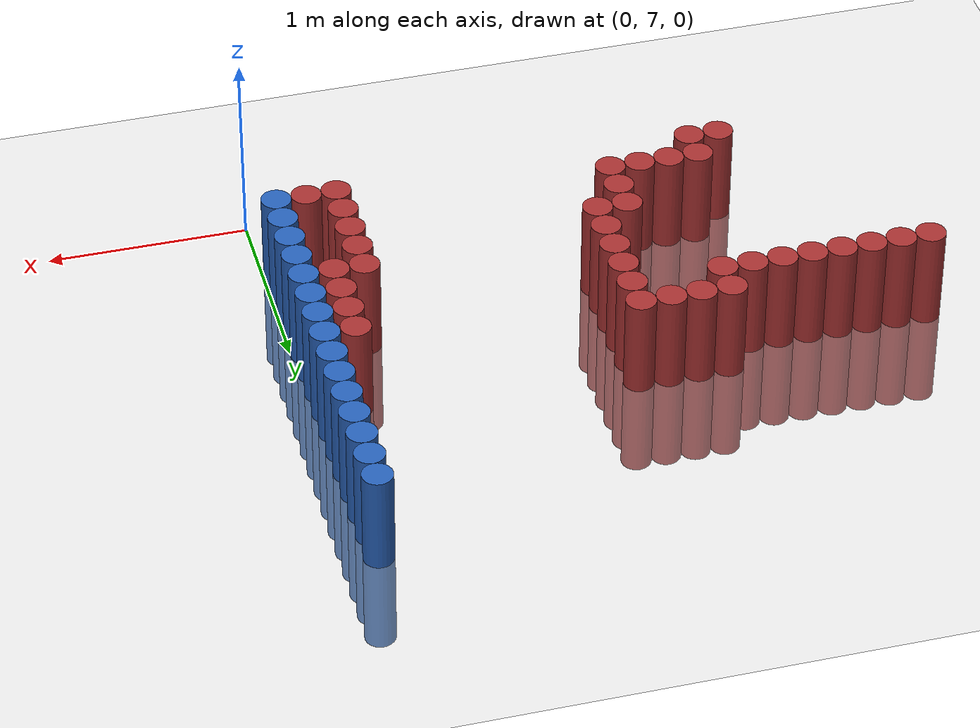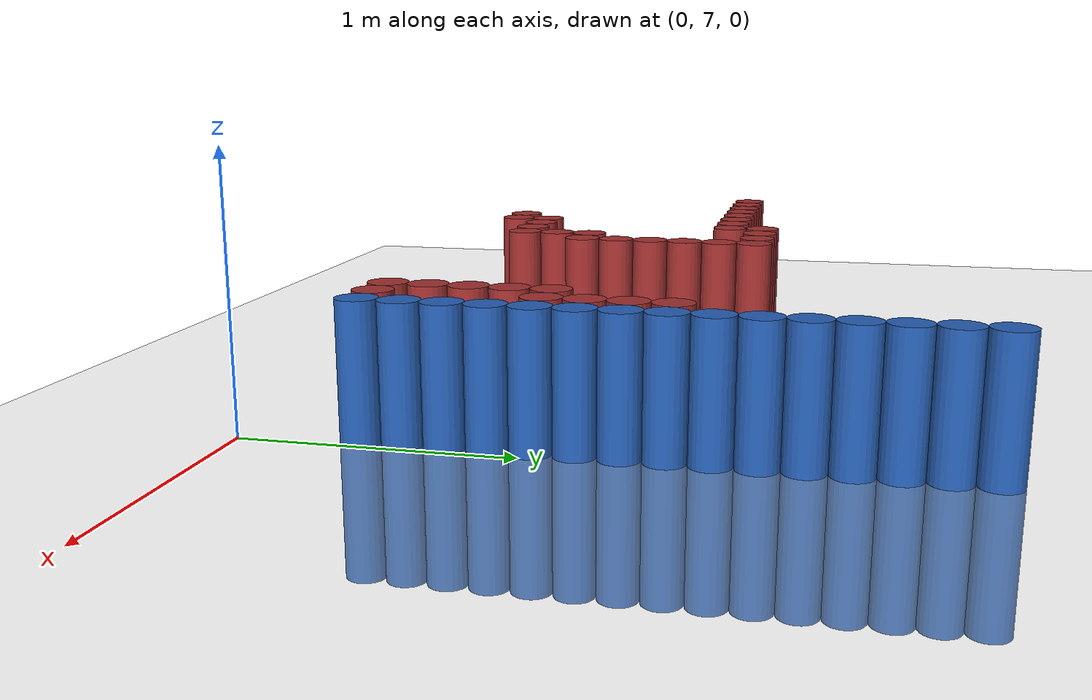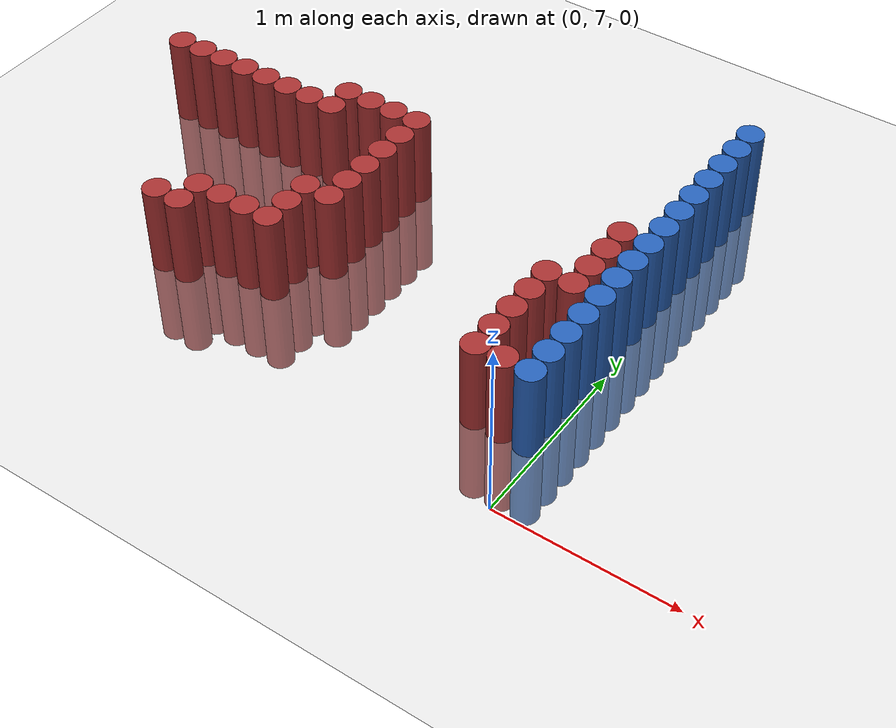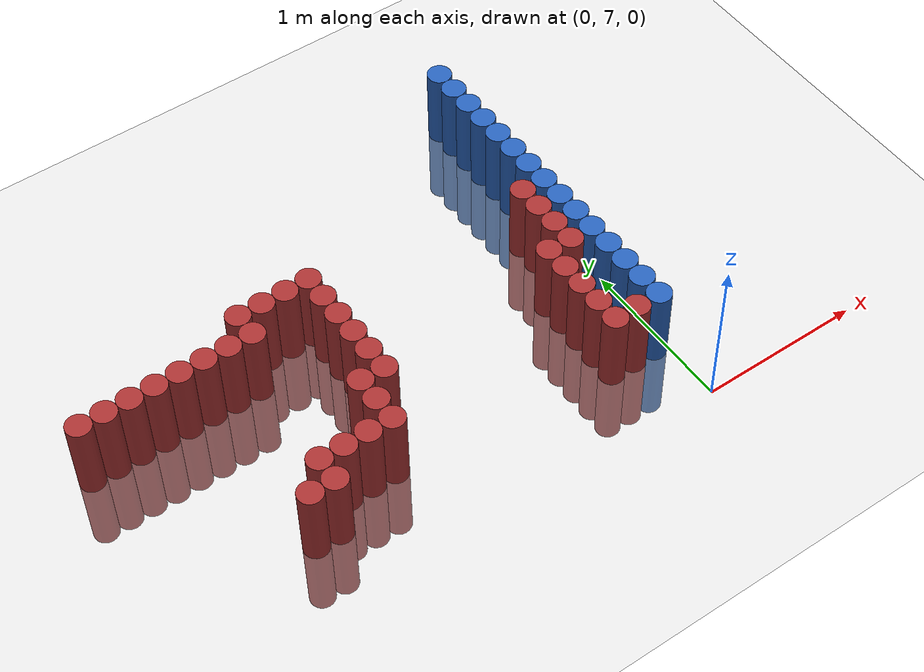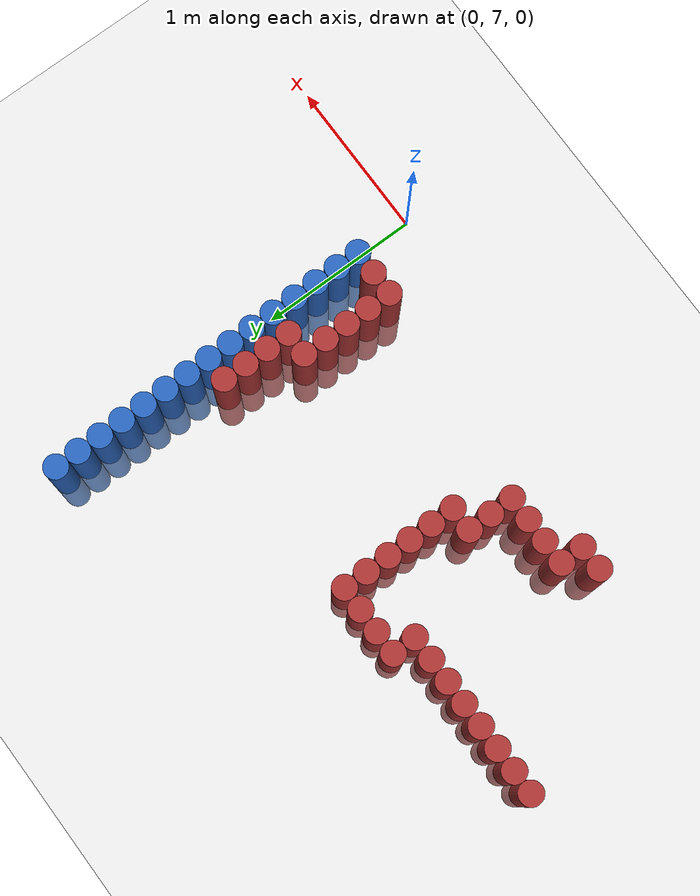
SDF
<sdf version="1.6">
 <world name="default">
  <model name="ground_plane">
   <static>1</static>
   <link name="link">
    <collision name="collision">
     <geometry><plane><normal>0 0 1</normal><size>100 100</size></plane></geometry>
     <surface><friction><ode><mu>100</mu><mu2>50</mu2></ode></friction></surface>
    </collision>
    <visual name="visual">
     <cast_shadows>0</cast_shadows>
     <geometry><plane><normal>0 0 1</normal><size>100 100</size></plane></geometry>
     <material>
      <script><uri>file://media/materials/scripts/gazebo.material</uri><name>Gazebo/Grey</name></script>
     </material>
    </visual>
   </link>
  </model>
  <model name="unit_cylinder_149">
   <static>1</static>
   <pose>-3.075000 8.475000 0.000000 0.000000 0.000000 0.000000</pose>
   <link name="link">
    <inertial>
     <mass>1</mass>
     <inertia><ixx>0.145833</ixx><ixy>0</ixy><ixz>0</ixz><iyy>0.145833</iyy><iyz>0</iyz><izz>0.125</izz></inertia>
    </inertial>
    <collision name="collision">
     <geometry><cylinder><radius>0.075000</radius><length>1</length></cylinder></geometry>
    </collision>
    <visual name="visual">
     <geometry><cylinder><radius>0.075000</radius><length>1</length></cylinder></geometry>
     <material>
      <ambient>0.648000 0.192000 0.192000 1</ambient>
      <diffuse>0.648000 0.192000 0.192000 1</diffuse>
     </material>
     <material>
      <script><name>Gazebo/Grey</name><uri>file://media/materials/scripts/gazebo.material</uri></script>
     </material>
    </visual>
   </link>
  </model>
  <model name="unit_cylinder_152">
   <static>1</static>
   <pose>-2.925000 8.475000 0.000000 0.000000 0.000000 0.000000</pose>
   <link name="link">
    <inertial>
     <mass>1</mass>
     <inertia><ixx>0.145833</ixx><ixy>0</ixy><ixz>0</ixz><iyy>0.145833</iyy><iyz>0</iyz><izz>0.125</izz></inertia>
    </inertial>
    <collision name="collision">
     <geometry><cylinder><radius>0.075000</radius><length>1</length></cylinder></geometry>
    </collision>
    <visual name="visual">
     <geometry><cylinder><radius>0.075000</radius><length>1</length></cylinder></geometry>
     <material>
      <ambient>0.648000 0.192000 0.192000 1</ambient>
      <diffuse>0.648000 0.192000 0.192000 1</diffuse>
     </material>
     <material>
      <script><name>Gazebo/Grey</name><uri>file://media/materials/scripts/gazebo.material</uri></script>
     </material>
    </visual>
   </link>
  </model>
  <model name="unit_cylinder_155">
   <static>1</static>
   <pose>-2.775000 8.475000 0.000000 0.000000 0.000000 0.000000</pose>
   <link name="link">
    <inertial>
     <mass>1</mass>
     <inertia><ixx>0.145833</ixx><ixy>0</ixy><ixz>0</ixz><iyy>0.145833</iyy><iyz>0</iyz><izz>0.125</izz></inertia>
    </inertial>
    <collision name="collision">
     <geometry><cylinder><radius>0.075000</radius><length>1</length></cylinder></geometry>
    </collision>
    <visual name="visual">
     <geometry><cylinder><radius>0.075000</radius><length>1</length></cylinder></geometry>
     <material>
      <ambient>0.648000 0.192000 0.192000 1</ambient>
      <diffuse>0.648000 0.192000 0.192000 1</diffuse>
     </material>
     <material>
      <script><name>Gazebo/Grey</name><uri>file://media/materials/scripts/gazebo.material</uri></script>
     </material>
    </visual>
   </link>
  </model>
  <model name="unit_cylinder_162">
   <static>1</static>
   <pose>-2.625000 8.475000 0.000000 0.000000 0.000000 0.000000</pose>
   <link name="link">
    <inertial>
     <mass>1</mass>
     <inertia><ixx>0.145833</ixx><ixy>0</ixy><ixz>0</ixz><iyy>0.145833</iyy><iyz>0</iyz><izz>0.125</izz></inertia>
    </inertial>
    <collision name="collision">
     <geometry><cylinder><radius>0.075000</radius><length>1</length></cylinder></geometry>
    </collision>
    <visual name="visual">
     <geometry><cylinder><radius>0.075000</radius><length>1</length></cylinder></geometry>
     <material>
      <ambient>0.648000 0.192000 0.192000 1</ambient>
      <diffuse>0.648000 0.192000 0.192000 1</diffuse>
     </material>
     <material>
      <script><name>Gazebo/Grey</name><uri>file://media/materials/scripts/gazebo.material</uri></script>
     </material>
    </visual>
   </link>
  </model>
  <model name="unit_cylinder_164">
   <static>1</static>
   <pose>-2.475000 8.475000 0.000000 0.000000 0.000000 0.000000</pose>
   <link name="link">
    <inertial>
     <mass>1</mass>
     <inertia><ixx>0.145833</ixx><ixy>0</ixy><ixz>0</ixz><iyy>0.145833</iyy><iyz>0</iyz><izz>0.125</izz></inertia>
    </inertial>
    <collision name="collision">
     <geometry><cylinder><radius>0.075000</radius><length>1</length></cylinder></geometry>
    </collision>
    <visual name="visual">
     <geometry><cylinder><radius>0.075000</radius><length>1</length></cylinder></geometry>
     <material>
      <ambient>0.648000 0.192000 0.192000 1</ambient>
      <diffuse>0.648000 0.192000 0.192000 1</diffuse>
     </material>
     <material>
      <script><name>Gazebo/Grey</name><uri>file://media/materials/scripts/gazebo.material</uri></script>
     </material>
    </visual>
   </link>
  </model>
  <model name="unit_cylinder_177">
   <static>1</static>
   <pose>-2.325000 7.425000 0.000000 0.000000 0.000000 0.000000</pose>
   <link name="link">
    <inertial>
     <mass>1</mass>
     <inertia><ixx>0.145833</ixx><ixy>0</ixy><ixz>0</ixz><iyy>0.145833</iyy><iyz>0</iyz><izz>0.125</izz></inertia>
    </inertial>
    <collision name="collision">
     <geometry><cylinder><radius>0.075000</radius><length>1</length></cylinder></geometry>
    </collision>
    <visual name="visual">
     <geometry><cylinder><radius>0.075000</radius><length>1</length></cylinder></geometry>
     <material>
      <ambient>0.648000 0.192000 0.192000 1</ambient>
      <diffuse>0.648000 0.192000 0.192000 1</diffuse>
     </material>
     <material>
      <script><name>Gazebo/Grey</name><uri>file://media/materials/scripts/gazebo.material</uri></script>
     </material>
    </visual>
   </link>
  </model>
  <model name="unit_cylinder_178">
   <static>1</static>
   <pose>-2.325000 8.475000 0.000000 0.000000 0.000000 0.000000</pose>
   <link name="link">
    <inertial>
     <mass>1</mass>
     <inertia><ixx>0.145833</ixx><ixy>0</ixy><ixz>0</ixz><iyy>0.145833</iyy><iyz>0</iyz><izz>0.125</izz></inertia>
    </inertial>
    <collision name="collision">
     <geometry><cylinder><radius>0.075000</radius><length>1</length></cylinder></geometry>
    </collision>
    <visual name="visual">
     <geometry><cylinder><radius>0.075000</radius><length>1</length></cylinder></geometry>
     <material>
      <ambient>0.648000 0.192000 0.192000 1</ambient>
      <diffuse>0.648000 0.192000 0.192000 1</diffuse>
     </material>
     <material>
      <script><name>Gazebo/Grey</name><uri>file://media/materials/scripts/gazebo.material</uri></script>
     </material>
    </visual>
   </link>
  </model>
  <model name="unit_cylinder_182">
   <static>1</static>
   <pose>-2.175000 7.425000 0.000000 0.000000 0.000000 0.000000</pose>
   <link name="link">
    <inertial>
     <mass>1</mass>
     <inertia><ixx>0.145833</ixx><ixy>0</ixy><ixz>0</ixz><iyy>0.145833</iyy><iyz>0</iyz><izz>0.125</izz></inertia>
    </inertial>
    <collision name="collision">
     <geometry><cylinder><radius>0.075000</radius><length>1</length></cylinder></geometry>
    </collision>
    <visual name="visual">
     <geometry><cylinder><radius>0.075000</radius><length>1</length></cylinder></geometry>
     <material>
      <ambient>0.648000 0.192000 0.192000 1</ambient>
      <diffuse>0.648000 0.192000 0.192000 1</diffuse>
     </material>
     <material>
      <script><name>Gazebo/Grey</name><uri>file://media/materials/scripts/gazebo.material</uri></script>
     </material>
    </visual>
   </link>
  </model>
  <model name="unit_cylinder_183">
   <static>1</static>
   <pose>-2.175000 7.575000 0.000000 0.000000 0.000000 0.000000</pose>
   <link name="link">
    <inertial>
     <mass>1</mass>
     <inertia><ixx>0.145833</ixx><ixy>0</ixy><ixz>0</ixz><iyy>0.145833</iyy><iyz>0</iyz><izz>0.125</izz></inertia>
    </inertial>
    <collision name="collision">
     <geometry><cylinder><radius>0.075000</radius><length>1</length></cylinder></geometry>
    </collision>
    <visual name="visual">
     <geometry><cylinder><radius>0.075000</radius><length>1</length></cylinder></geometry>
     <material>
      <ambient>0.648000 0.192000 0.192000 1</ambient>
      <diffuse>0.648000 0.192000 0.192000 1</diffuse>
     </material>
     <material>
      <script><name>Gazebo/Grey</name><uri>file://media/materials/scripts/gazebo.material</uri></script>
     </material>
    </visual>
   </link>
  </model>
  <model name="unit_cylinder_184">
   <static>1</static>
   <pose>-2.175000 8.475000 0.000000 0.000000 0.000000 0.000000</pose>
   <link name="link">
    <inertial>
     <mass>1</mass>
     <inertia><ixx>0.145833</ixx><ixy>0</ixy><ixz>0</ixz><iyy>0.145833</iyy><iyz>0</iyz><izz>0.125</izz></inertia>
    </inertial>
    <collision name="collision">
     <geometry><cylinder><radius>0.075000</radius><length>1</length></cylinder></geometry>
    </collision>
    <visual name="visual">
     <geometry><cylinder><radius>0.075000</radius><length>1</length></cylinder></geometry>
     <material>
      <ambient>0.648000 0.192000 0.192000 1</ambient>
      <diffuse>0.648000 0.192000 0.192000 1</diffuse>
     </material>
     <material>
      <script><name>Gazebo/Grey</name><uri>file://media/materials/scripts/gazebo.material</uri></script>
     </material>
    </visual>
   </link>
  </model>
  <model name="unit_cylinder_185">
   <static>1</static>
   <pose>-2.025000 7.575000 0.000000 0.000000 0.000000 0.000000</pose>
   <link name="link">
    <inertial>
     <mass>1</mass>
     <inertia><ixx>0.145833</ixx><ixy>0</ixy><ixz>0</ixz><iyy>0.145833</iyy><iyz>0</iyz><izz>0.125</izz></inertia>
    </inertial>
    <collision name="collision">
     <geometry><cylinder><radius>0.075000</radius><length>1</length></cylinder></geometry>
    </collision>
    <visual name="visual">
     <geometry><cylinder><radius>0.075000</radius><length>1</length></cylinder></geometry>
     <material>
      <ambient>0.648000 0.192000 0.192000 1</ambient>
      <diffuse>0.648000 0.192000 0.192000 1</diffuse>
     </material>
     <material>
      <script><name>Gazebo/Grey</name><uri>file://media/materials/scripts/gazebo.material</uri></script>
     </material>
    </visual>
   </link>
  </model>
  <model name="unit_cylinder_186">
   <static>1</static>
   <pose>-2.025000 8.475000 0.000000 0.000000 0.000000 0.000000</pose>
   <link name="link">
    <inertial>
     <mass>1</mass>
     <inertia><ixx>0.145833</ixx><ixy>0</ixy><ixz>0</ixz><iyy>0.145833</iyy><iyz>0</iyz><izz>0.125</izz></inertia>
    </inertial>
    <collision name="collision">
     <geometry><cylinder><radius>0.075000</radius><length>1</length></cylinder></geometry>
    </collision>
    <visual name="visual">
     <geometry><cylinder><radius>0.075000</radius><length>1</length></cylinder></geometry>
     <material>
      <ambient>0.648000 0.192000 0.192000 1</ambient>
      <diffuse>0.648000 0.192000 0.192000 1</diffuse>
     </material>
     <material>
      <script><name>Gazebo/Grey</name><uri>file://media/materials/scripts/gazebo.material</uri></script>
     </material>
    </visual>
   </link>
  </model>
  <model name="unit_cylinder_187">
   <static>1</static>
   <pose>-2.025000 8.625000 0.000000 0.000000 0.000000 0.000000</pose>
   <link name="link">
    <inertial>
     <mass>1</mass>
     <inertia><ixx>0.145833</ixx><ixy>0</ixy><ixz>0</ixz><iyy>0.145833</iyy><iyz>0</iyz><izz>0.125</izz></inertia>
    </inertial>
    <collision name="collision">
     <geometry><cylinder><radius>0.075000</radius><length>1</length></cylinder></geometry>
    </collision>
    <visual name="visual">
     <geometry><cylinder><radius>0.075000</radius><length>1</length></cylinder></geometry>
     <material>
      <ambient>0.648000 0.192000 0.192000 1</ambient>
      <diffuse>0.648000 0.192000 0.192000 1</diffuse>
     </material>
     <material>
      <script><name>Gazebo/Grey</name><uri>file://media/materials/scripts/gazebo.material</uri></script>
     </material>
    </visual>
   </link>
  </model>
  <model name="unit_cylinder_188">
   <static>1</static>
   <pose>-1.875000 7.575000 0.000000 0.000000 0.000000 0.000000</pose>
   <link name="link">
    <inertial>
     <mass>1</mass>
     <inertia><ixx>0.145833</ixx><ixy>0</ixy><ixz>0</ixz><iyy>0.145833</iyy><iyz>0</iyz><izz>0.125</izz></inertia>
    </inertial>
    <collision name="collision">
     <geometry><cylinder><radius>0.075000</radius><length>1</length></cylinder></geometry>
    </collision>
    <visual name="visual">
     <geometry><cylinder><radius>0.075000</radius><length>1</length></cylinder></geometry>
     <material>
      <ambient>0.648000 0.192000 0.192000 1</ambient>
      <diffuse>0.648000 0.192000 0.192000 1</diffuse>
     </material>
     <material>
      <script><name>Gazebo/Grey</name><uri>file://media/materials/scripts/gazebo.material</uri></script>
     </material>
    </visual>
   </link>
  </model>
  <model name="unit_cylinder_189">
   <static>1</static>
   <pose>-1.875000 8.625000 0.000000 0.000000 0.000000 0.000000</pose>
   <link name="link">
    <inertial>
     <mass>1</mass>
     <inertia><ixx>0.145833</ixx><ixy>0</ixy><ixz>0</ixz><iyy>0.145833</iyy><iyz>0</iyz><izz>0.125</izz></inertia>
    </inertial>
    <collision name="collision">
     <geometry><cylinder><radius>0.075000</radius><length>1</length></cylinder></geometry>
    </collision>
    <visual name="visual">
     <geometry><cylinder><radius>0.075000</radius><length>1</length></cylinder></geometry>
     <material>
      <ambient>0.648000 0.192000 0.192000 1</ambient>
      <diffuse>0.648000 0.192000 0.192000 1</diffuse>
     </material>
     <material>
      <script><name>Gazebo/Grey</name><uri>file://media/materials/scripts/gazebo.material</uri></script>
     </material>
    </visual>
   </link>
  </model>
  <model name="unit_cylinder_190">
   <static>1</static>
   <pose>-1.725000 7.575000 0.000000 0.000000 0.000000 0.000000</pose>
   <link name="link">
    <inertial>
     <mass>1</mass>
     <inertia><ixx>0.145833</ixx><ixy>0</ixy><ixz>0</ixz><iyy>0.145833</iyy><iyz>0</iyz><izz>0.125</izz></inertia>
    </inertial>
    <collision name="collision">
     <geometry><cylinder><radius>0.075000</radius><length>1</length></cylinder></geometry>
    </collision>
    <visual name="visual">
     <geometry><cylinder><radius>0.075000</radius><length>1</length></cylinder></geometry>
     <material>
      <ambient>0.648000 0.192000 0.192000 1</ambient>
      <diffuse>0.648000 0.192000 0.192000 1</diffuse>
     </material>
     <material>
      <script><name>Gazebo/Grey</name><uri>file://media/materials/scripts/gazebo.material</uri></script>
     </material>
    </visual>
   </link>
  </model>
  <model name="unit_cylinder_191">
   <static>1</static>
   <pose>-1.725000 7.725000 0.000000 0.000000 0.000000 0.000000</pose>
   <link name="link">
    <inertial>
     <mass>1</mass>
     <inertia><ixx>0.145833</ixx><ixy>0</ixy><ixz>0</ixz><iyy>0.145833</iyy><iyz>0</iyz><izz>0.125</izz></inertia>
    </inertial>
    <collision name="collision">
     <geometry><cylinder><radius>0.075000</radius><length>1</length></cylinder></geometry>
    </collision>
    <visual name="visual">
     <geometry><cylinder><radius>0.075000</radius><length>1</length></cylinder></geometry>
     <material>
      <ambient>0.648000 0.192000 0.192000 1</ambient>
      <diffuse>0.648000 0.192000 0.192000 1</diffuse>
     </material>
     <material>
      <script><name>Gazebo/Grey</name><uri>file://media/materials/scripts/gazebo.material</uri></script>
     </material>
    </visual>
   </link>
  </model>
  <model name="unit_cylinder_192">
   <static>1</static>
   <pose>-1.725000 7.875000 0.000000 0.000000 0.000000 0.000000</pose>
   <link name="link">
    <inertial>
     <mass>1</mass>
     <inertia><ixx>0.145833</ixx><ixy>0</ixy><ixz>0</ixz><iyy>0.145833</iyy><iyz>0</iyz><izz>0.125</izz></inertia>
    </inertial>
    <collision name="collision">
     <geometry><cylinder><radius>0.075000</radius><length>1</length></cylinder></geometry>
    </collision>
    <visual name="visual">
     <geometry><cylinder><radius>0.075000</radius><length>1</length></cylinder></geometry>
     <material>
      <ambient>0.648000 0.192000 0.192000 1</ambient>
      <diffuse>0.648000 0.192000 0.192000 1</diffuse>
     </material>
     <material>
      <script><name>Gazebo/Grey</name><uri>file://media/materials/scripts/gazebo.material</uri></script>
     </material>
    </visual>
   </link>
  </model>
  <model name="unit_cylinder_193">
   <static>1</static>
   <pose>-1.725000 8.625000 0.000000 0.000000 0.000000 0.000000</pose>
   <link name="link">
    <inertial>
     <mass>1</mass>
     <inertia><ixx>0.145833</ixx><ixy>0</ixy><ixz>0</ixz><iyy>0.145833</iyy><iyz>0</iyz><izz>0.125</izz></inertia>
    </inertial>
    <collision name="collision">
     <geometry><cylinder><radius>0.075000</radius><length>1</length></cylinder></geometry>
    </collision>
    <visual name="visual">
     <geometry><cylinder><radius>0.075000</radius><length>1</length></cylinder></geometry>
     <material>
      <ambient>0.648000 0.192000 0.192000 1</ambient>
      <diffuse>0.648000 0.192000 0.192000 1</diffuse>
     </material>
     <material>
      <script><name>Gazebo/Grey</name><uri>file://media/materials/scripts/gazebo.material</uri></script>
     </material>
    </visual>
   </link>
  </model>
  <model name="unit_cylinder_194">
   <static>1</static>
   <pose>-1.575000 7.875000 0.000000 0.000000 0.000000 0.000000</pose>
   <link name="link">
    <inertial>
     <mass>1</mass>
     <inertia><ixx>0.145833</ixx><ixy>0</ixy><ixz>0</ixz><iyy>0.145833</iyy><iyz>0</iyz><izz>0.125</izz></inertia>
    </inertial>
    <collision name="collision">
     <geometry><cylinder><radius>0.075000</radius><length>1</length></cylinder></geometry>
    </collision>
    <visual name="visual">
     <geometry><cylinder><radius>0.075000</radius><length>1</length></cylinder></geometry>
     <material>
      <ambient>0.648000 0.192000 0.192000 1</ambient>
      <diffuse>0.648000 0.192000 0.192000 1</diffuse>
     </material>
     <material>
      <script><name>Gazebo/Grey</name><uri>file://media/materials/scripts/gazebo.material</uri></script>
     </material>
    </visual>
   </link>
  </model>
  <model name="unit_cylinder_195">
   <static>1</static>
   <pose>-1.575000 8.025000 0.000000 0.000000 0.000000 0.000000</pose>
   <link name="link">
    <inertial>
     <mass>1</mass>
     <inertia><ixx>0.145833</ixx><ixy>0</ixy><ixz>0</ixz><iyy>0.145833</iyy><iyz>0</iyz><izz>0.125</izz></inertia>
    </inertial>
    <collision name="collision">
     <geometry><cylinder><radius>0.075000</radius><length>1</length></cylinder></geometry>
    </collision>
    <visual name="visual">
     <geometry><cylinder><radius>0.075000</radius><length>1</length></cylinder></geometry>
     <material>
      <ambient>0.648000 0.192000 0.192000 1</ambient>
      <diffuse>0.648000 0.192000 0.192000 1</diffuse>
     </material>
     <material>
      <script><name>Gazebo/Grey</name><uri>file://media/materials/scripts/gazebo.material</uri></script>
     </material>
    </visual>
   </link>
  </model>
  <model name="unit_cylinder_196">
   <static>1</static>
   <pose>-1.575000 8.175000 0.000000 0.000000 0.000000 0.000000</pose>
   <link name="link">
    <inertial>
     <mass>1</mass>
     <inertia><ixx>0.145833</ixx><ixy>0</ixy><ixz>0</ixz><iyy>0.145833</iyy><iyz>0</iyz><izz>0.125</izz></inertia>
    </inertial>
    <collision name="collision">
     <geometry><cylinder><radius>0.075000</radius><length>1</length></cylinder></geometry>
    </collision>
    <visual name="visual">
     <geometry><cylinder><radius>0.075000</radius><length>1</length></cylinder></geometry>
     <material>
      <ambient>0.648000 0.192000 0.192000 1</ambient>
      <diffuse>0.648000 0.192000 0.192000 1</diffuse>
     </material>
     <material>
      <script><name>Gazebo/Grey</name><uri>file://media/materials/scripts/gazebo.material</uri></script>
     </material>
    </visual>
   </link>
  </model>
  <model name="unit_cylinder_197">
   <static>1</static>
   <pose>-1.575000 8.325000 0.000000 0.000000 0.000000 0.000000</pose>
   <link name="link">
    <inertial>
     <mass>1</mass>
     <inertia><ixx>0.145833</ixx><ixy>0</ixy><ixz>0</ixz><iyy>0.145833</iyy><iyz>0</iyz><izz>0.125</izz></inertia>
    </inertial>
    <collision name="collision">
     <geometry><cylinder><radius>0.075000</radius><length>1</length></cylinder></geometry>
    </collision>
    <visual name="visual">
     <geometry><cylinder><radius>0.075000</radius><length>1</length></cylinder></geometry>
     <material>
      <ambient>0.648000 0.192000 0.192000 1</ambient>
      <diffuse>0.648000 0.192000 0.192000 1</diffuse>
     </material>
     <material>
      <script><name>Gazebo/Grey</name><uri>file://media/materials/scripts/gazebo.material</uri></script>
     </material>
    </visual>
   </link>
  </model>
  <model name="unit_cylinder_198">
   <static>1</static>
   <pose>-1.575000 8.475000 0.000000 0.000000 0.000000 0.000000</pose>
   <link name="link">
    <inertial>
     <mass>1</mass>
     <inertia><ixx>0.145833</ixx><ixy>0</ixy><ixz>0</ixz><iyy>0.145833</iyy><iyz>0</iyz><izz>0.125</izz></inertia>
    </inertial>
    <collision name="collision">
     <geometry><cylinder><radius>0.075000</radius><length>1</length></cylinder></geometry>
    </collision>
    <visual name="visual">
     <geometry><cylinder><radius>0.075000</radius><length>1</length></cylinder></geometry>
     <material>
      <ambient>0.648000 0.192000 0.192000 1</ambient>
      <diffuse>0.648000 0.192000 0.192000 1</diffuse>
     </material>
     <material>
      <script><name>Gazebo/Grey</name><uri>file://media/materials/scripts/gazebo.material</uri></script>
     </material>
    </visual>
   </link>
  </model>
  <model name="unit_cylinder_199">
   <static>1</static>
   <pose>-1.575000 8.625000 0.000000 0.000000 0.000000 0.000000</pose>
   <link name="link">
    <inertial>
     <mass>1</mass>
     <inertia><ixx>0.145833</ixx><ixy>0</ixy><ixz>0</ixz><iyy>0.145833</iyy><iyz>0</iyz><izz>0.125</izz></inertia>
    </inertial>
    <collision name="collision">
     <geometry><cylinder><radius>0.075000</radius><length>1</length></cylinder></geometry>
    </collision>
    <visual name="visual">
     <geometry><cylinder><radius>0.075000</radius><length>1</length></cylinder></geometry>
     <material>
      <ambient>0.648000 0.192000 0.192000 1</ambient>
      <diffuse>0.648000 0.192000 0.192000 1</diffuse>
     </material>
     <material>
      <script><name>Gazebo/Grey</name><uri>file://media/materials/scripts/gazebo.material</uri></script>
     </material>
    </visual>
   </link>
  </model>
  <model name="unit_cylinder_205">
   <static>1</static>
   <pose>-0.375000 7.425000 0.000000 0.000000 0.000000 0.000000</pose>
   <link name="link">
    <inertial>
     <mass>1</mass>
     <inertia><ixx>0.145833</ixx><ixy>0</ixy><ixz>0</ixz><iyy>0.145833</iyy><iyz>0</iyz><izz>0.125</izz></inertia>
    </inertial>
    <collision name="collision">
     <geometry><cylinder><radius>0.075000</radius><length>1</length></cylinder></geometry>
    </collision>
    <visual name="visual">
     <geometry><cylinder><radius>0.075000</radius><length>1</length></cylinder></geometry>
     <material>
      <ambient>0.648000 0.192000 0.192000 1</ambient>
      <diffuse>0.648000 0.192000 0.192000 1</diffuse>
     </material>
     <material>
      <script><name>Gazebo/Grey</name><uri>file://media/materials/scripts/gazebo.material</uri></script>
     </material>
    </visual>
   </link>
  </model>
  <model name="unit_cylinder_206">
   <static>1</static>
   <pose>-0.375000 7.575000 0.000000 0.000000 0.000000 0.000000</pose>
   <link name="link">
    <inertial>
     <mass>1</mass>
     <inertia><ixx>0.145833</ixx><ixy>0</ixy><ixz>0</ixz><iyy>0.145833</iyy><iyz>0</iyz><izz>0.125</izz></inertia>
    </inertial>
    <collision name="collision">
     <geometry><cylinder><radius>0.075000</radius><length>1</length></cylinder></geometry>
    </collision>
    <visual name="visual">
     <geometry><cylinder><radius>0.075000</radius><length>1</length></cylinder></geometry>
     <material>
      <ambient>0.648000 0.192000 0.192000 1</ambient>
      <diffuse>0.648000 0.192000 0.192000 1</diffuse>
     </material>
     <material>
      <script><name>Gazebo/Grey</name><uri>file://media/materials/scripts/gazebo.material</uri></script>
     </material>
    </visual>
   </link>
  </model>
  <model name="unit_cylinder_207">
   <static>1</static>
   <pose>-0.375000 7.725000 0.000000 0.000000 0.000000 0.000000</pose>
   <link name="link">
    <inertial>
     <mass>1</mass>
     <inertia><ixx>0.145833</ixx><ixy>0</ixy><ixz>0</ixz><iyy>0.145833</iyy><iyz>0</iyz><izz>0.125</izz></inertia>
    </inertial>
    <collision name="collision">
     <geometry><cylinder><radius>0.075000</radius><length>1</length></cylinder></geometry>
    </collision>
    <visual name="visual">
     <geometry><cylinder><radius>0.075000</radius><length>1</length></cylinder></geometry>
     <material>
      <ambient>0.648000 0.192000 0.192000 1</ambient>
      <diffuse>0.648000 0.192000 0.192000 1</diffuse>
     </material>
     <material>
      <script><name>Gazebo/Grey</name><uri>file://media/materials/scripts/gazebo.material</uri></script>
     </material>
    </visual>
   </link>
  </model>
  <model name="unit_cylinder_208">
   <static>1</static>
   <pose>-0.375000 7.875000 0.000000 0.000000 0.000000 0.000000</pose>
   <link name="link">
    <inertial>
     <mass>1</mass>
     <inertia><ixx>0.145833</ixx><ixy>0</ixy><ixz>0</ixz><iyy>0.145833</iyy><iyz>0</iyz><izz>0.125</izz></inertia>
    </inertial>
    <collision name="collision">
     <geometry><cylinder><radius>0.075000</radius><length>1</length></cylinder></geometry>
    </collision>
    <visual name="visual">
     <geometry><cylinder><radius>0.075000</radius><length>1</length></cylinder></geometry>
     <material>
      <ambient>0.648000 0.192000 0.192000 1</ambient>
      <diffuse>0.648000 0.192000 0.192000 1</diffuse>
     </material>
     <material>
      <script><name>Gazebo/Grey</name><uri>file://media/materials/scripts/gazebo.material</uri></script>
     </material>
    </visual>
   </link>
  </model>
  <model name="unit_cylinder_209">
   <static>1</static>
   <pose>-0.375000 8.025000 0.000000 0.000000 0.000000 0.000000</pose>
   <link name="link">
    <inertial>
     <mass>1</mass>
     <inertia><ixx>0.145833</ixx><ixy>0</ixy><ixz>0</ixz><iyy>0.145833</iyy><iyz>0</iyz><izz>0.125</izz></inertia>
    </inertial>
    <collision name="collision">
     <geometry><cylinder><radius>0.075000</radius><length>1</length></cylinder></geometry>
    </collision>
    <visual name="visual">
     <geometry><cylinder><radius>0.075000</radius><length>1</length></cylinder></geometry>
     <material>
      <ambient>0.648000 0.192000 0.192000 1</ambient>
      <diffuse>0.648000 0.192000 0.192000 1</diffuse>
     </material>
     <material>
      <script><name>Gazebo/Grey</name><uri>file://media/materials/scripts/gazebo.material</uri></script>
     </material>
    </visual>
   </link>
  </model>
  <model name="unit_cylinder_212">
   <static>1</static>
   <pose>-0.225000 7.425000 0.000000 0.000000 0.000000 0.000000</pose>
   <link name="link">
    <inertial>
     <mass>1</mass>
     <inertia><ixx>0.145833</ixx><ixy>0</ixy><ixz>0</ixz><iyy>0.145833</iyy><iyz>0</iyz><izz>0.125</izz></inertia>
    </inertial>
    <collision name="collision">
     <geometry><cylinder><radius>0.075000</radius><length>1</length></cylinder></geometry>
    </collision>
    <visual name="visual">
     <geometry><cylinder><radius>0.075000</radius><length>1</length></cylinder></geometry>
     <material>
      <ambient>0.648000 0.192000 0.192000 1</ambient>
      <diffuse>0.648000 0.192000 0.192000 1</diffuse>
     </material>
     <material>
      <script><name>Gazebo/Grey</name><uri>file://media/materials/scripts/gazebo.material</uri></script>
     </material>
    </visual>
   </link>
  </model>
  <model name="unit_cylinder_213">
   <static>1</static>
   <pose>-0.225000 8.025000 0.000000 0.000000 0.000000 0.000000</pose>
   <link name="link">
    <inertial>
     <mass>1</mass>
     <inertia><ixx>0.145833</ixx><ixy>0</ixy><ixz>0</ixz><iyy>0.145833</iyy><iyz>0</iyz><izz>0.125</izz></inertia>
    </inertial>
    <collision name="collision">
     <geometry><cylinder><radius>0.075000</radius><length>1</length></cylinder></geometry>
    </collision>
    <visual name="visual">
     <geometry><cylinder><radius>0.075000</radius><length>1</length></cylinder></geometry>
     <material>
      <ambient>0.648000 0.192000 0.192000 1</ambient>
      <diffuse>0.648000 0.192000 0.192000 1</diffuse>
     </material>
     <material>
      <script><name>Gazebo/Grey</name><uri>file://media/materials/scripts/gazebo.material</uri></script>
     </material>
    </visual>
   </link>
  </model>
  <model name="unit_cylinder_214">
   <static>1</static>
   <pose>-0.225000 8.175000 0.000000 0.000000 0.000000 0.000000</pose>
   <link name="link">
    <inertial>
     <mass>1</mass>
     <inertia><ixx>0.145833</ixx><ixy>0</ixy><ixz>0</ixz><iyy>0.145833</iyy><iyz>0</iyz><izz>0.125</izz></inertia>
    </inertial>
    <collision name="collision">
     <geometry><cylinder><radius>0.075000</radius><length>1</length></cylinder></geometry>
    </collision>
    <visual name="visual">
     <geometry><cylinder><radius>0.075000</radius><length>1</length></cylinder></geometry>
     <material>
      <ambient>0.648000 0.192000 0.192000 1</ambient>
      <diffuse>0.648000 0.192000 0.192000 1</diffuse>
     </material>
     <material>
      <script><name>Gazebo/Grey</name><uri>file://media/materials/scripts/gazebo.material</uri></script>
     </material>
    </visual>
   </link>
  </model>
  <model name="unit_cylinder_215">
   <static>1</static>
   <pose>-0.225000 8.325000 0.000000 0.000000 0.000000 0.000000</pose>
   <link name="link">
    <inertial>
     <mass>1</mass>
     <inertia><ixx>0.145833</ixx><ixy>0</ixy><ixz>0</ixz><iyy>0.145833</iyy><iyz>0</iyz><izz>0.125</izz></inertia>
    </inertial>
    <collision name="collision">
     <geometry><cylinder><radius>0.075000</radius><length>1</length></cylinder></geometry>
    </collision>
    <visual name="visual">
     <geometry><cylinder><radius>0.075000</radius><length>1</length></cylinder></geometry>
     <material>
      <ambient>0.648000 0.192000 0.192000 1</ambient>
      <diffuse>0.648000 0.192000 0.192000 1</diffuse>
     </material>
     <material>
      <script><name>Gazebo/Grey</name><uri>file://media/materials/scripts/gazebo.material</uri></script>
     </material>
    </visual>
   </link>
  </model>
  <model name="unit_cylinder_216">
   <static>1</static>
   <pose>-0.225000 8.475000 0.000000 0.000000 0.000000 0.000000</pose>
   <link name="link">
    <inertial>
     <mass>1</mass>
     <inertia><ixx>0.145833</ixx><ixy>0</ixy><ixz>0</ixz><iyy>0.145833</iyy><iyz>0</iyz><izz>0.125</izz></inertia>
    </inertial>
    <collision name="collision">
     <geometry><cylinder><radius>0.075000</radius><length>1</length></cylinder></geometry>
    </collision>
    <visual name="visual">
     <geometry><cylinder><radius>0.075000</radius><length>1</length></cylinder></geometry>
     <material>
      <ambient>0.648000 0.192000 0.192000 1</ambient>
      <diffuse>0.648000 0.192000 0.192000 1</diffuse>
     </material>
     <material>
      <script><name>Gazebo/Grey</name><uri>file://media/materials/scripts/gazebo.material</uri></script>
     </material>
    </visual>
   </link>
  </model>
  <model name="unit_cylinder_232">
   <static>1</static>
   <pose>-0.075000 7.425000 0.000000 0.000000 0.000000 0.000000</pose>
   <link name="link">
    <inertial>
     <mass>1</mass>
     <inertia><ixx>0.145833</ixx><ixy>0</ixy><ixz>0</ixz><iyy>0.145833</iyy><iyz>0</iyz><izz>0.125</izz></inertia>
    </inertial>
    <collision name="collision">
     <geometry><cylinder><radius>0.075000</radius><length>1</length></cylinder></geometry>
    </collision>
    <visual name="visual">
     <geometry><cylinder><radius>0.075000</radius><length>1</length></cylinder></geometry>
     <material>
      <ambient>0.152000 0.379000 0.720000 1</ambient>
      <diffuse>0.152000 0.379000 0.720000 1</diffuse>
     </material>
     <material>
      <script><name>Gazebo/Grey</name><uri>file://media/materials/scripts/gazebo.material</uri></script>
     </material>
    </visual>
   </link>
  </model>
  <model name="unit_cylinder_233">
   <static>1</static>
   <pose>-0.075000 7.575000 0.000000 0.000000 0.000000 0.000000</pose>
   <link name="link">
    <inertial>
     <mass>1</mass>
     <inertia><ixx>0.145833</ixx><ixy>0</ixy><ixz>0</ixz><iyy>0.145833</iyy><iyz>0</iyz><izz>0.125</izz></inertia>
    </inertial>
    <collision name="collision">
     <geometry><cylinder><radius>0.075000</radius><length>1</length></cylinder></geometry>
    </collision>
    <visual name="visual">
     <geometry><cylinder><radius>0.075000</radius><length>1</length></cylinder></geometry>
     <material>
      <ambient>0.152000 0.379000 0.720000 1</ambient>
      <diffuse>0.152000 0.379000 0.720000 1</diffuse>
     </material>
     <material>
      <script><name>Gazebo/Grey</name><uri>file://media/materials/scripts/gazebo.material</uri></script>
     </material>
    </visual>
   </link>
  </model>
  <model name="unit_cylinder_234">
   <static>1</static>
   <pose>-0.075000 7.725000 0.000000 0.000000 0.000000 0.000000</pose>
   <link name="link">
    <inertial>
     <mass>1</mass>
     <inertia><ixx>0.145833</ixx><ixy>0</ixy><ixz>0</ixz><iyy>0.145833</iyy><iyz>0</iyz><izz>0.125</izz></inertia>
    </inertial>
    <collision name="collision">
     <geometry><cylinder><radius>0.075000</radius><length>1</length></cylinder></geometry>
    </collision>
    <visual name="visual">
     <geometry><cylinder><radius>0.075000</radius><length>1</length></cylinder></geometry>
     <material>
      <ambient>0.152000 0.379000 0.720000 1</ambient>
      <diffuse>0.152000 0.379000 0.720000 1</diffuse>
     </material>
     <material>
      <script><name>Gazebo/Grey</name><uri>file://media/materials/scripts/gazebo.material</uri></script>
     </material>
    </visual>
   </link>
  </model>
  <model name="unit_cylinder_235">
   <static>1</static>
   <pose>-0.075000 7.875000 0.000000 0.000000 0.000000 0.000000</pose>
   <link name="link">
    <inertial>
     <mass>1</mass>
     <inertia><ixx>0.145833</ixx><ixy>0</ixy><ixz>0</ixz><iyy>0.145833</iyy><iyz>0</iyz><izz>0.125</izz></inertia>
    </inertial>
    <collision name="collision">
     <geometry><cylinder><radius>0.075000</radius><length>1</length></cylinder></geometry>
    </collision>
    <visual name="visual">
     <geometry><cylinder><radius>0.075000</radius><length>1</length></cylinder></geometry>
     <material>
      <ambient>0.152000 0.379000 0.720000 1</ambient>
      <diffuse>0.152000 0.379000 0.720000 1</diffuse>
     </material>
     <material>
      <script><name>Gazebo/Grey</name><uri>file://media/materials/scripts/gazebo.material</uri></script>
     </material>
    </visual>
   </link>
  </model>
  <model name="unit_cylinder_236">
   <static>1</static>
   <pose>-0.075000 8.025000 0.000000 0.000000 0.000000 0.000000</pose>
   <link name="link">
    <inertial>
     <mass>1</mass>
     <inertia><ixx>0.145833</ixx><ixy>0</ixy><ixz>0</ixz><iyy>0.145833</iyy><iyz>0</iyz><izz>0.125</izz></inertia>
    </inertial>
    <collision name="collision">
     <geometry><cylinder><radius>0.075000</radius><length>1</length></cylinder></geometry>
    </collision>
    <visual name="visual">
     <geometry><cylinder><radius>0.075000</radius><length>1</length></cylinder></geometry>
     <material>
      <ambient>0.152000 0.379000 0.720000 1</ambient>
      <diffuse>0.152000 0.379000 0.720000 1</diffuse>
     </material>
     <material>
      <script><name>Gazebo/Grey</name><uri>file://media/materials/scripts/gazebo.material</uri></script>
     </material>
    </visual>
   </link>
  </model>
  <model name="unit_cylinder_237">
   <static>1</static>
   <pose>-0.075000 8.175000 0.000000 0.000000 0.000000 0.000000</pose>
   <link name="link">
    <inertial>
     <mass>1</mass>
     <inertia><ixx>0.145833</ixx><ixy>0</ixy><ixz>0</ixz><iyy>0.145833</iyy><iyz>0</iyz><izz>0.125</izz></inertia>
    </inertial>
    <collision name="collision">
     <geometry><cylinder><radius>0.075000</radius><length>1</length></cylinder></geometry>
    </collision>
    <visual name="visual">
     <geometry><cylinder><radius>0.075000</radius><length>1</length></cylinder></geometry>
     <material>
      <ambient>0.152000 0.379000 0.720000 1</ambient>
      <diffuse>0.152000 0.379000 0.720000 1</diffuse>
     </material>
     <material>
      <script><name>Gazebo/Grey</name><uri>file://media/materials/scripts/gazebo.material</uri></script>
     </material>
    </visual>
   </link>
  </model>
  <model name="unit_cylinder_238">
   <static>1</static>
   <pose>-0.075000 8.325000 0.000000 0.000000 0.000000 0.000000</pose>
   <link name="link">
    <inertial>
     <mass>1</mass>
     <inertia><ixx>0.145833</ixx><ixy>0</ixy><ixz>0</ixz><iyy>0.145833</iyy><iyz>0</iyz><izz>0.125</izz></inertia>
    </inertial>
    <collision name="collision">
     <geometry><cylinder><radius>0.075000</radius><length>1</length></cylinder></geometry>
    </collision>
    <visual name="visual">
     <geometry><cylinder><radius>0.075000</radius><length>1</length></cylinder></geometry>
     <material>
      <ambient>0.152000 0.379000 0.720000 1</ambient>
      <diffuse>0.152000 0.379000 0.720000 1</diffuse>
     </material>
     <material>
      <script><name>Gazebo/Grey</name><uri>file://media/materials/scripts/gazebo.material</uri></script>
     </material>
    </visual>
   </link>
  </model>
  <model name="unit_cylinder_239">
   <static>1</static>
   <pose>-0.075000 8.475000 0.000000 0.000000 0.000000 0.000000</pose>
   <link name="link">
    <inertial>
     <mass>1</mass>
     <inertia><ixx>0.145833</ixx><ixy>0</ixy><ixz>0</ixz><iyy>0.145833</iyy><iyz>0</iyz><izz>0.125</izz></inertia>
    </inertial>
    <collision name="collision">
     <geometry><cylinder><radius>0.075000</radius><length>1</length></cylinder></geometry>
    </collision>
    <visual name="visual">
     <geometry><cylinder><radius>0.075000</radius><length>1</length></cylinder></geometry>
     <material>
      <ambient>0.152000 0.379000 0.720000 1</ambient>
      <diffuse>0.152000 0.379000 0.720000 1</diffuse>
     </material>
     <material>
      <script><name>Gazebo/Grey</name><uri>file://media/materials/scripts/gazebo.material</uri></script>
     </material>
    </visual>
   </link>
  </model>
  <model name="unit_cylinder_240">
   <static>1</static>
   <pose>-0.075000 8.625000 0.000000 0.000000 0.000000 0.000000</pose>
   <link name="link">
    <inertial>
     <mass>1</mass>
     <inertia><ixx>0.145833</ixx><ixy>0</ixy><ixz>0</ixz><iyy>0.145833</iyy><iyz>0</iyz><izz>0.125</izz></inertia>
    </inertial>
    <collision name="collision">
     <geometry><cylinder><radius>0.075000</radius><length>1</length></cylinder></geometry>
    </collision>
    <visual name="visual">
     <geometry><cylinder><radius>0.075000</radius><length>1</length></cylinder></geometry>
     <material>
      <ambient>0.152000 0.379000 0.720000 1</ambient>
      <diffuse>0.152000 0.379000 0.720000 1</diffuse>
     </material>
     <material>
      <script><name>Gazebo/Grey</name><uri>file://media/materials/scripts/gazebo.material</uri></script>
     </material>
    </visual>
   </link>
  </model>
  <model name="unit_cylinder_241">
   <static>1</static>
   <pose>-0.075000 8.775000 0.000000 0.000000 0.000000 0.000000</pose>
   <link name="link">
    <inertial>
     <mass>1</mass>
     <inertia><ixx>0.145833</ixx><ixy>0</ixy><ixz>0</ixz><iyy>0.145833</iyy><iyz>0</iyz><izz>0.125</izz></inertia>
    </inertial>
    <collision name="collision">
     <geometry><cylinder><radius>0.075000</radius><length>1</length></cylinder></geometry>
    </collision>
    <visual name="visual">
     <geometry><cylinder><radius>0.075000</radius><length>1</length></cylinder></geometry>
     <material>
      <ambient>0.152000 0.379000 0.720000 1</ambient>
      <diffuse>0.152000 0.379000 0.720000 1</diffuse>
     </material>
     <material>
      <script><name>Gazebo/Grey</name><uri>file://media/materials/scripts/gazebo.material</uri></script>
     </material>
    </visual>
   </link>
  </model>
  <model name="unit_cylinder_242">
   <static>1</static>
   <pose>-0.075000 8.925000 0.000000 0.000000 0.000000 0.000000</pose>
   <link name="link">
    <inertial>
     <mass>1</mass>
     <inertia><ixx>0.145833</ixx><ixy>0</ixy><ixz>0</ixz><iyy>0.145833</iyy><iyz>0</iyz><izz>0.125</izz></inertia>
    </inertial>
    <collision name="collision">
     <geometry><cylinder><radius>0.075000</radius><length>1</length></cylinder></geometry>
    </collision>
    <visual name="visual">
     <geometry><cylinder><radius>0.075000</radius><length>1</length></cylinder></geometry>
     <material>
      <ambient>0.152000 0.379000 0.720000 1</ambient>
      <diffuse>0.152000 0.379000 0.720000 1</diffuse>
     </material>
     <material>
      <script><name>Gazebo/Grey</name><uri>file://media/materials/scripts/gazebo.material</uri></script>
     </material>
    </visual>
   </link>
  </model>
  <model name="unit_cylinder_243">
   <static>1</static>
   <pose>-0.075000 9.075000 0.000000 0.000000 0.000000 0.000000</pose>
   <link name="link">
    <inertial>
     <mass>1</mass>
     <inertia><ixx>0.145833</ixx><ixy>0</ixy><ixz>0</ixz><iyy>0.145833</iyy><iyz>0</iyz><izz>0.125</izz></inertia>
    </inertial>
    <collision name="collision">
     <geometry><cylinder><radius>0.075000</radius><length>1</length></cylinder></geometry>
    </collision>
    <visual name="visual">
     <geometry><cylinder><radius>0.075000</radius><length>1</length></cylinder></geometry>
     <material>
      <ambient>0.152000 0.379000 0.720000 1</ambient>
      <diffuse>0.152000 0.379000 0.720000 1</diffuse>
     </material>
     <material>
      <script><name>Gazebo/Grey</name><uri>file://media/materials/scripts/gazebo.material</uri></script>
     </material>
    </visual>
   </link>
  </model>
  <model name="unit_cylinder_244">
   <static>1</static>
   <pose>-0.075000 9.225000 0.000000 0.000000 0.000000 0.000000</pose>
   <link name="link">
    <inertial>
     <mass>1</mass>
     <inertia><ixx>0.145833</ixx><ixy>0</ixy><ixz>0</ixz><iyy>0.145833</iyy><iyz>0</iyz><izz>0.125</izz></inertia>
    </inertial>
    <collision name="collision">
     <geometry><cylinder><radius>0.075000</radius><length>1</length></cylinder></geometry>
    </collision>
    <visual name="visual">
     <geometry><cylinder><radius>0.075000</radius><length>1</length></cylinder></geometry>
     <material>
      <ambient>0.152000 0.379000 0.720000 1</ambient>
      <diffuse>0.152000 0.379000 0.720000 1</diffuse>
     </material>
     <material>
      <script><name>Gazebo/Grey</name><uri>file://media/materials/scripts/gazebo.material</uri></script>
     </material>
    </visual>
   </link>
  </model>
  <model name="unit_cylinder_245">
   <static>1</static>
   <pose>-0.075000 9.375000 0.000000 0.000000 0.000000 0.000000</pose>
   <link name="link">
    <inertial>
     <mass>1</mass>
     <inertia><ixx>0.145833</ixx><ixy>0</ixy><ixz>0</ixz><iyy>0.145833</iyy><iyz>0</iyz><izz>0.125</izz></inertia>
    </inertial>
    <collision name="collision">
     <geometry><cylinder><radius>0.075000</radius><length>1</length></cylinder></geometry>
    </collision>
    <visual name="visual">
     <geometry><cylinder><radius>0.075000</radius><length>1</length></cylinder></geometry>
     <material>
      <ambient>0.152000 0.379000 0.720000 1</ambient>
      <diffuse>0.152000 0.379000 0.720000 1</diffuse>
     </material>
     <material>
      <script><name>Gazebo/Grey</name><uri>file://media/materials/scripts/gazebo.material</uri></script>
     </material>
    </visual>
   </link>
  </model>
  <model name="unit_cylinder_246">
   <static>1</static>
   <pose>-0.075000 9.525000 0.000000 0.000000 0.000000 0.000000</pose>
   <link name="link">
    <inertial>
     <mass>1</mass>
     <inertia><ixx>0.145833</ixx><ixy>0</ixy><ixz>0</ixz><iyy>0.145833</iyy><iyz>0</iyz><izz>0.125</izz></inertia>
    </inertial>
    <collision name="collision">
     <geometry><cylinder><radius>0.075000</radius><length>1</length></cylinder></geometry>
    </collision>
    <visual name="visual">
     <geometry><cylinder><radius>0.075000</radius><length>1</length></cylinder></geometry>
     <material>
      <ambient>0.152000 0.379000 0.720000 1</ambient>
      <diffuse>0.152000 0.379000 0.720000 1</diffuse>
     </material>
     <material>
      <script><name>Gazebo/Grey</name><uri>file://media/materials/scripts/gazebo.material</uri></script>
     </material>
    </visual>
   </link>
  </model>
 </world>
</sdf>
